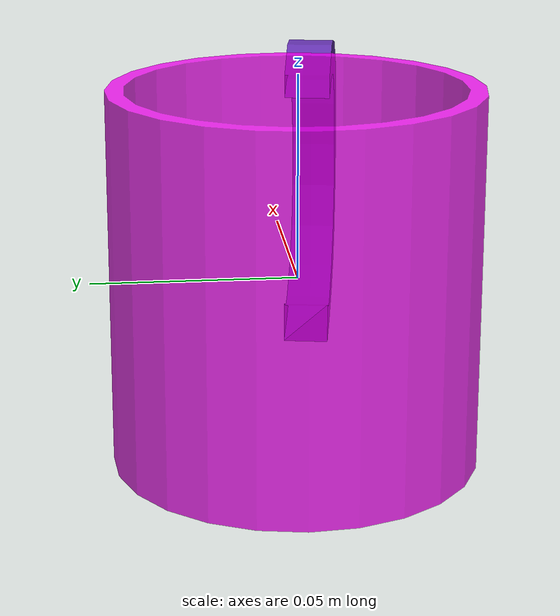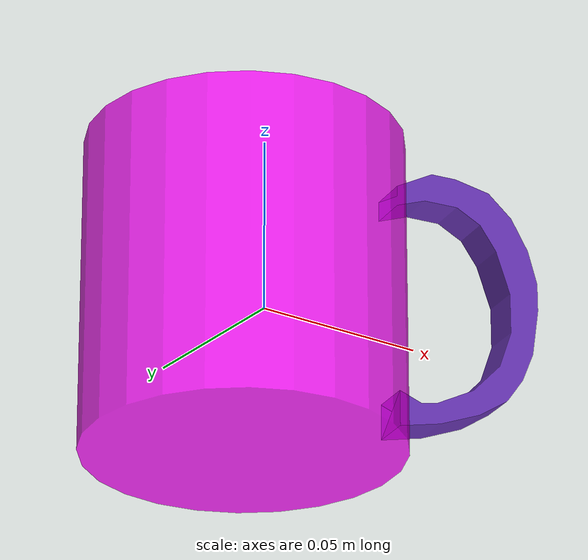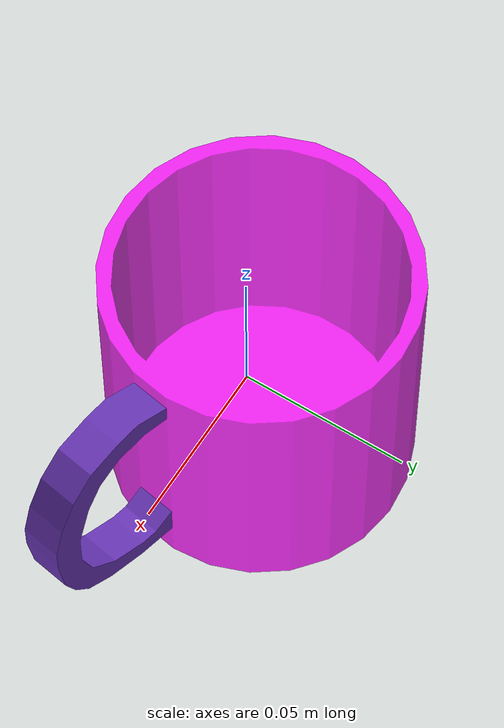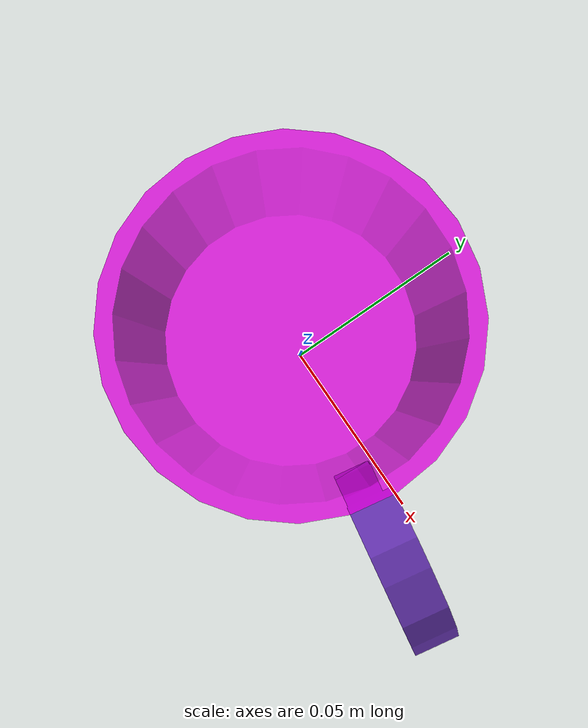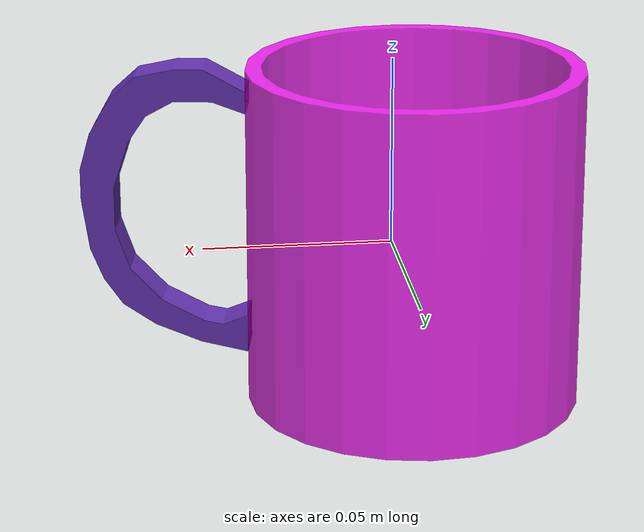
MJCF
<?xml version="1.0" encoding="utf-8"?>
<mujoco model="top_watertight_tiny">

  <asset>

    <mesh file="top_watertight_tiny.obj"/>

    <mesh file="top_watertight_tiny_collision_0.obj"/>

    <mesh file="top_watertight_tiny_collision_1.obj"/>

    <mesh file="top_watertight_tiny_collision_2.obj"/>

    <mesh file="top_watertight_tiny_collision_3.obj"/>

    <mesh file="top_watertight_tiny_collision_4.obj"/>

    <mesh file="top_watertight_tiny_collision_5.obj"/>

    <mesh file="top_watertight_tiny_collision_6.obj"/>

    <mesh file="top_watertight_tiny_collision_7.obj"/>

    <mesh file="top_watertight_tiny_collision_8.obj"/>

    <mesh file="top_watertight_tiny_collision_9.obj"/>

    <mesh file="top_watertight_tiny_collision_10.obj"/>

    <mesh file="top_watertight_tiny_collision_11.obj"/>

    <mesh file="top_watertight_tiny_collision_12.obj"/>

    <mesh file="top_watertight_tiny_collision_13.obj"/>

    <mesh file="top_watertight_tiny_collision_14.obj"/>

    <mesh file="top_watertight_tiny_collision_15.obj"/>

    <mesh file="top_watertight_tiny_collision_16.obj"/>

    <mesh file="top_watertight_tiny_collision_17.obj"/>

    <mesh file="top_watertight_tiny_collision_18.obj"/>

    <mesh file="top_watertight_tiny_collision_19.obj"/>

    <mesh file="top_watertight_tiny_collision_20.obj"/>

    <mesh file="top_watertight_tiny_collision_21.obj"/>

    <mesh file="top_watertight_tiny_collision_22.obj"/>

    <mesh file="top_watertight_tiny_collision_23.obj"/>

    <mesh file="top_watertight_tiny_collision_24.obj"/>

    <mesh file="top_watertight_tiny_collision_25.obj"/>

    <mesh file="top_watertight_tiny_collision_26.obj"/>

    <mesh file="top_watertight_tiny_collision_27.obj"/>

    <mesh file="top_watertight_tiny_collision_28.obj"/>

    <mesh file="top_watertight_tiny_collision_29.obj"/>

    <mesh file="top_watertight_tiny_collision_30.obj"/>

    <mesh file="top_watertight_tiny_collision_31.obj"/>

    <mesh file="top_watertight_tiny_collision_32.obj"/>

    <mesh file="top_watertight_tiny_collision_33.obj"/>

    <mesh file="top_watertight_tiny_collision_34.obj"/>

    <mesh file="top_watertight_tiny_collision_35.obj"/>

    <mesh file="top_watertight_tiny_collision_36.obj"/>

    <mesh file="top_watertight_tiny_collision_37.obj"/>

    <mesh file="top_watertight_tiny_collision_38.obj"/>

    <mesh file="top_watertight_tiny_collision_39.obj"/>

    <mesh file="top_watertight_tiny_collision_40.obj"/>

    <mesh file="top_watertight_tiny_collision_41.obj"/>

    <mesh file="top_watertight_tiny_collision_42.obj"/>

    <mesh file="top_watertight_tiny_collision_43.obj"/>

    <mesh file="top_watertight_tiny_collision_44.obj"/>

    <mesh file="top_watertight_tiny_collision_45.obj"/>

    <mesh file="top_watertight_tiny_collision_46.obj"/>

    <mesh file="top_watertight_tiny_collision_47.obj"/>

    <mesh file="top_watertight_tiny_collision_48.obj"/>

    <mesh file="top_watertight_tiny_collision_49.obj"/>

    <mesh file="top_watertight_tiny_collision_50.obj"/>

    <mesh file="top_watertight_tiny_collision_51.obj"/>

    <mesh file="top_watertight_tiny_collision_52.obj"/>

    <mesh file="top_watertight_tiny_collision_53.obj"/>

    <mesh file="top_watertight_tiny_collision_54.obj"/>

    <mesh file="top_watertight_tiny_collision_55.obj"/>

    <mesh file="top_watertight_tiny_collision_56.obj"/>

    <mesh file="top_watertight_tiny_collision_57.obj"/>

    <mesh file="top_watertight_tiny_collision_58.obj"/>

    <mesh file="top_watertight_tiny_collision_59.obj"/>

    <mesh file="top_watertight_tiny_collision_60.obj"/>

    <mesh file="top_watertight_tiny_collision_61.obj"/>

    <mesh file="top_watertight_tiny_collision_62.obj"/>

    <mesh file="top_watertight_tiny_collision_63.obj"/>

    <mesh file="top_watertight_tiny_collision_64.obj"/>

    <mesh file="top_watertight_tiny_collision_65.obj"/>

    <mesh file="top_watertight_tiny_collision_66.obj"/>

    <mesh file="top_watertight_tiny_collision_67.obj"/>

    <mesh file="top_watertight_tiny_collision_68.obj"/>

    <mesh file="top_watertight_tiny_collision_69.obj"/>

    <mesh file="top_watertight_tiny_collision_70.obj"/>

    <mesh file="top_watertight_tiny_collision_71.obj"/>

    <mesh file="top_watertight_tiny_collision_72.obj"/>

    <mesh file="top_watertight_tiny_collision_73.obj"/>

    <mesh file="top_watertight_tiny_collision_74.obj"/>

    <mesh file="bottom_watertight_tiny.obj"/>

    <mesh file="bottom_watertight_tiny_collision_0.obj"/>

    <mesh file="bottom_watertight_tiny_collision_1.obj"/>

    <mesh file="bottom_watertight_tiny_collision_2.obj"/>

    <mesh file="bottom_watertight_tiny_collision_3.obj"/>

    <mesh file="bottom_watertight_tiny_collision_4.obj"/>

    <mesh file="bottom_watertight_tiny_collision_5.obj"/>

    <mesh file="bottom_watertight_tiny_collision_6.obj"/>

    <mesh file="bottom_watertight_tiny_collision_7.obj"/>

    <mesh file="bottom_watertight_tiny_collision_8.obj"/>

    <mesh file="bottom_watertight_tiny_collision_9.obj"/>

    <mesh file="bottom_watertight_tiny_collision_10.obj"/>

    <mesh file="bottom_watertight_tiny_collision_11.obj"/>

    <mesh file="bottom_watertight_tiny_collision_12.obj"/>

    <mesh file="bottom_watertight_tiny_collision_13.obj"/>

    <mesh file="bottom_watertight_tiny_collision_14.obj"/>

    <mesh file="bottom_watertight_tiny_collision_15.obj"/>

    <mesh file="bottom_watertight_tiny_collision_16.obj"/>

    <mesh file="bottom_watertight_tiny_collision_17.obj"/>

    <mesh file="bottom_watertight_tiny_collision_18.obj"/>

    <mesh file="bottom_watertight_tiny_collision_19.obj"/>

    <mesh file="bottom_watertight_tiny_collision_20.obj"/>

    <mesh file="bottom_watertight_tiny_collision_21.obj"/>

    <mesh file="bottom_watertight_tiny_collision_22.obj"/>

    <mesh file="bottom_watertight_tiny_collision_23.obj"/>

    <mesh file="bottom_watertight_tiny_collision_24.obj"/>

    <mesh file="bottom_watertight_tiny_collision_25.obj"/>

    <mesh file="bottom_watertight_tiny_collision_26.obj"/>

    <mesh file="bottom_watertight_tiny_collision_27.obj"/>

    <mesh file="bottom_watertight_tiny_collision_28.obj"/>

    <mesh file="bottom_watertight_tiny_collision_29.obj"/>

    <mesh file="bottom_watertight_tiny_collision_30.obj"/>

    <mesh file="bottom_watertight_tiny_collision_31.obj"/>

    <mesh file="bottom_watertight_tiny_collision_32.obj"/>

    <mesh file="bottom_watertight_tiny_collision_33.obj"/>

    <mesh file="bottom_watertight_tiny_collision_34.obj"/>

    <mesh file="bottom_watertight_tiny_collision_35.obj"/>

  </asset>

  <worldbody>

    <body name="top_watertight_tiny">

      <freejoint/>

      <geom mesh="top_watertight_tiny" group="2" type="mesh" rgba="0.4 0.2 0.7 1" contype="0" conaffinity="0" solimp="0.90 0.95 0.001" solref="0.02 1.0" density="100" friction="0.95 0.4 0.3"/>

      <geom mesh="top_watertight_tiny_collision_0" rgba="0.3919542809286014 0.33766176132084236 0.6101253547378767 1" group="3" type="mesh" solimp="0.90 0.95 0.001" solref="0.02 1.0" density="100" friction="0.95 0.4 0.3"/>

      <geom mesh="top_watertight_tiny_collision_1" rgba="0.009675265050078319 0.4080541806869692 0.12914366905516783 1" group="3" type="mesh" solimp="0.90 0.95 0.001" solref="0.02 1.0" density="100" friction="0.95 0.4 0.3"/>

      <geom mesh="top_watertight_tiny_collision_2" rgba="0.5695169627863276 0.27286326130004834 0.49575011100315025 1" group="3" type="mesh" solimp="0.90 0.95 0.001" solref="0.02 1.0" density="100" friction="0.95 0.4 0.3"/>

      <geom mesh="top_watertight_tiny_collision_3" rgba="0.3430438197780107 0.22466993840039218 0.1984683940436892 1" group="3" type="mesh" solimp="0.90 0.95 0.001" solref="0.02 1.0" density="100" friction="0.95 0.4 0.3"/>

      <geom mesh="top_watertight_tiny_collision_4" rgba="0.09234592759558913 0.5708819599759194 0.7753755785992633 1" group="3" type="mesh" solimp="0.90 0.95 0.001" solref="0.02 1.0" density="100" friction="0.95 0.4 0.3"/>

      <geom mesh="top_watertight_tiny_collision_5" rgba="0.8805010474172906 0.9488384193659842 0.25009421404208765 1" group="3" type="mesh" solimp="0.90 0.95 0.001" solref="0.02 1.0" density="100" friction="0.95 0.4 0.3"/>

      <geom mesh="top_watertight_tiny_collision_6" rgba="0.29108545283713805 0.06467223712559589 0.7679915165958194 1" group="3" type="mesh" solimp="0.90 0.95 0.001" solref="0.02 1.0" density="100" friction="0.95 0.4 0.3"/>

      <geom mesh="top_watertight_tiny_collision_7" rgba="0.4787859104694496 0.049628436475867566 0.3357750892839746 1" group="3" type="mesh" solimp="0.90 0.95 0.001" solref="0.02 1.0" density="100" friction="0.95 0.4 0.3"/>

      <geom mesh="top_watertight_tiny_collision_8" rgba="0.8267939298536675 0.31840859222576146 0.36066606521623523 1" group="3" type="mesh" solimp="0.90 0.95 0.001" solref="0.02 1.0" density="100" friction="0.95 0.4 0.3"/>

      <geom mesh="top_watertight_tiny_collision_9" rgba="0.894199596777209 0.5504527527574182 0.11710961455976299 1" group="3" type="mesh" solimp="0.90 0.95 0.001" solref="0.02 1.0" density="100" friction="0.95 0.4 0.3"/>

      <geom mesh="top_watertight_tiny_collision_10" rgba="0.5868509386243852 0.20986855372386515 0.7617356169559211 1" group="3" type="mesh" solimp="0.90 0.95 0.001" solref="0.02 1.0" density="100" friction="0.95 0.4 0.3"/>

      <geom mesh="top_watertight_tiny_collision_11" rgba="0.3678905068441838 0.5791459085475805 0.17610640526762045 1" group="3" type="mesh" solimp="0.90 0.95 0.001" solref="0.02 1.0" density="100" friction="0.95 0.4 0.3"/>

      <geom mesh="top_watertight_tiny_collision_12" rgba="0.9301543992117014 0.10909862789668168 0.10670301401158899 1" group="3" type="mesh" solimp="0.90 0.95 0.001" solref="0.02 1.0" density="100" friction="0.95 0.4 0.3"/>

      <geom mesh="top_watertight_tiny_collision_13" rgba="0.8335509473149793 0.17550008753826696 0.025208866225087112 1" group="3" type="mesh" solimp="0.90 0.95 0.001" solref="0.02 1.0" density="100" friction="0.95 0.4 0.3"/>

      <geom mesh="top_watertight_tiny_collision_14" rgba="0.9395385856664701 0.5599445848534931 0.2753973873095057 1" group="3" type="mesh" solimp="0.90 0.95 0.001" solref="0.02 1.0" density="100" friction="0.95 0.4 0.3"/>

      <geom mesh="top_watertight_tiny_collision_15" rgba="0.8530769919882758 0.8451222408741156 0.6304560950700017 1" group="3" type="mesh" solimp="0.90 0.95 0.001" solref="0.02 1.0" density="100" friction="0.95 0.4 0.3"/>

      <geom mesh="top_watertight_tiny_collision_16" rgba="0.5613258910652602 0.45882914999835755 0.2793698957737065 1" group="3" type="mesh" solimp="0.90 0.95 0.001" solref="0.02 1.0" density="100" friction="0.95 0.4 0.3"/>

      <geom mesh="top_watertight_tiny_collision_17" rgba="0.5272662398519375 0.23637045025508596 0.34357780505028357 1" group="3" type="mesh" solimp="0.90 0.95 0.001" solref="0.02 1.0" density="100" friction="0.95 0.4 0.3"/>

      <geom mesh="top_watertight_tiny_collision_18" rgba="0.06219469546392764 0.7062734363168404 0.023954540552283632 1" group="3" type="mesh" solimp="0.90 0.95 0.001" solref="0.02 1.0" density="100" friction="0.95 0.4 0.3"/>

      <geom mesh="top_watertight_tiny_collision_19" rgba="0.35202056849698005 0.08334786376848546 0.14281187165767106 1" group="3" type="mesh" solimp="0.90 0.95 0.001" solref="0.02 1.0" density="100" friction="0.95 0.4 0.3"/>

      <geom mesh="top_watertight_tiny_collision_20" rgba="0.2767286122624687 0.650353425315472 0.6920893640982593 1" group="3" type="mesh" solimp="0.90 0.95 0.001" solref="0.02 1.0" density="100" friction="0.95 0.4 0.3"/>

      <geom mesh="top_watertight_tiny_collision_21" rgba="0.7169140028731372 0.9995759486926231 0.12582050967569913 1" group="3" type="mesh" solimp="0.90 0.95 0.001" solref="0.02 1.0" density="100" friction="0.95 0.4 0.3"/>

      <geom mesh="top_watertight_tiny_collision_22" rgba="0.5960946570913178 0.21760627360956109 0.681012814581335 1" group="3" type="mesh" solimp="0.90 0.95 0.001" solref="0.02 1.0" density="100" friction="0.95 0.4 0.3"/>

      <geom mesh="top_watertight_tiny_collision_23" rgba="0.017080391527134142 0.6083316404524989 0.21850727427276495 1" group="3" type="mesh" solimp="0.90 0.95 0.001" solref="0.02 1.0" density="100" friction="0.95 0.4 0.3"/>

      <geom mesh="top_watertight_tiny_collision_24" rgba="0.6518561191818929 0.028709003810871492 0.30334715037861637 1" group="3" type="mesh" solimp="0.90 0.95 0.001" solref="0.02 1.0" density="100" friction="0.95 0.4 0.3"/>

      <geom mesh="top_watertight_tiny_collision_25" rgba="0.9500840859739423 0.9057155679177131 0.8408542982085778 1" group="3" type="mesh" solimp="0.90 0.95 0.001" solref="0.02 1.0" density="100" friction="0.95 0.4 0.3"/>

      <geom mesh="top_watertight_tiny_collision_26" rgba="0.36454094845854 0.9867163394099921 0.13077678356314448 1" group="3" type="mesh" solimp="0.90 0.95 0.001" solref="0.02 1.0" density="100" friction="0.95 0.4 0.3"/>

      <geom mesh="top_watertight_tiny_collision_27" rgba="0.6924051605855522 0.9301853789858004 0.9422684022916219 1" group="3" type="mesh" solimp="0.90 0.95 0.001" solref="0.02 1.0" density="100" friction="0.95 0.4 0.3"/>

      <geom mesh="top_watertight_tiny_collision_28" rgba="0.3792055845471284 0.8820767780894447 0.3881970996967937 1" group="3" type="mesh" solimp="0.90 0.95 0.001" solref="0.02 1.0" density="100" friction="0.95 0.4 0.3"/>

      <geom mesh="top_watertight_tiny_collision_29" rgba="0.9615612844498247 0.42720029465962595 0.04719996601002174 1" group="3" type="mesh" solimp="0.90 0.95 0.001" solref="0.02 1.0" density="100" friction="0.95 0.4 0.3"/>

      <geom mesh="top_watertight_tiny_collision_30" rgba="0.0832540163994897 0.281664449858253 0.28784817114830374 1" group="3" type="mesh" solimp="0.90 0.95 0.001" solref="0.02 1.0" density="100" friction="0.95 0.4 0.3"/>

      <geom mesh="top_watertight_tiny_collision_31" rgba="0.3087338241858595 0.26361206336712983 0.3722488227752554 1" group="3" type="mesh" solimp="0.90 0.95 0.001" solref="0.02 1.0" density="100" friction="0.95 0.4 0.3"/>

      <geom mesh="top_watertight_tiny_collision_32" rgba="0.14282833378720827 0.8363504880012563 0.8297676228431364 1" group="3" type="mesh" solimp="0.90 0.95 0.001" solref="0.02 1.0" density="100" friction="0.95 0.4 0.3"/>

      <geom mesh="top_watertight_tiny_collision_33" rgba="0.02454431720786676 0.7560658110740959 0.4115498506779903 1" group="3" type="mesh" solimp="0.90 0.95 0.001" solref="0.02 1.0" density="100" friction="0.95 0.4 0.3"/>

      <geom mesh="top_watertight_tiny_collision_34" rgba="0.33198203635880597 0.8160150103898857 0.06803121523948974 1" group="3" type="mesh" solimp="0.90 0.95 0.001" solref="0.02 1.0" density="100" friction="0.95 0.4 0.3"/>

      <geom mesh="top_watertight_tiny_collision_35" rgba="0.16042593995564025 0.05788960513435215 0.41051166494019387 1" group="3" type="mesh" solimp="0.90 0.95 0.001" solref="0.02 1.0" density="100" friction="0.95 0.4 0.3"/>

      <geom mesh="top_watertight_tiny_collision_36" rgba="0.30042718337092555 0.5533294455637431 0.9385795643943569 1" group="3" type="mesh" solimp="0.90 0.95 0.001" solref="0.02 1.0" density="100" friction="0.95 0.4 0.3"/>

      <geom mesh="top_watertight_tiny_collision_37" rgba="0.8428653400254756 0.41146890020940285 0.9946003651498975 1" group="3" type="mesh" solimp="0.90 0.95 0.001" solref="0.02 1.0" density="100" friction="0.95 0.4 0.3"/>

      <geom mesh="top_watertight_tiny_collision_38" rgba="0.4630489409659496 0.5601276315200703 0.5878687356737293 1" group="3" type="mesh" solimp="0.90 0.95 0.001" solref="0.02 1.0" density="100" friction="0.95 0.4 0.3"/>

      <geom mesh="top_watertight_tiny_collision_39" rgba="0.7412250873502351 0.013972965268557735 0.04244781657689167 1" group="3" type="mesh" solimp="0.90 0.95 0.001" solref="0.02 1.0" density="100" friction="0.95 0.4 0.3"/>

      <geom mesh="top_watertight_tiny_collision_40" rgba="0.9106330903748439 0.15851531059834734 0.49717989739105584 1" group="3" type="mesh" solimp="0.90 0.95 0.001" solref="0.02 1.0" density="100" friction="0.95 0.4 0.3"/>

      <geom mesh="top_watertight_tiny_collision_41" rgba="0.09397482306633165 0.7754171130714241 0.399438341253206 1" group="3" type="mesh" solimp="0.90 0.95 0.001" solref="0.02 1.0" density="100" friction="0.95 0.4 0.3"/>

      <geom mesh="top_watertight_tiny_collision_42" rgba="0.8484830137781723 0.22468416181203243 0.4900291884940714 1" group="3" type="mesh" solimp="0.90 0.95 0.001" solref="0.02 1.0" density="100" friction="0.95 0.4 0.3"/>

      <geom mesh="top_watertight_tiny_collision_43" rgba="0.7032641744937037 0.7629147146657931 0.6642370771243394 1" group="3" type="mesh" solimp="0.90 0.95 0.001" solref="0.02 1.0" density="100" friction="0.95 0.4 0.3"/>

      <geom mesh="top_watertight_tiny_collision_44" rgba="0.9745488240529014 0.46985746588928534 0.8824757853968976 1" group="3" type="mesh" solimp="0.90 0.95 0.001" solref="0.02 1.0" density="100" friction="0.95 0.4 0.3"/>

      <geom mesh="top_watertight_tiny_collision_45" rgba="0.18942158843857881 0.8833262024222952 0.765810167434738 1" group="3" type="mesh" solimp="0.90 0.95 0.001" solref="0.02 1.0" density="100" friction="0.95 0.4 0.3"/>

      <geom mesh="top_watertight_tiny_collision_46" rgba="0.029714259703401025 0.8152959847213447 0.4420610979169258 1" group="3" type="mesh" solimp="0.90 0.95 0.001" solref="0.02 1.0" density="100" friction="0.95 0.4 0.3"/>

      <geom mesh="top_watertight_tiny_collision_47" rgba="0.6635034865001267 0.2736853835481978 0.6243715773480459 1" group="3" type="mesh" solimp="0.90 0.95 0.001" solref="0.02 1.0" density="100" friction="0.95 0.4 0.3"/>

      <geom mesh="top_watertight_tiny_collision_48" rgba="0.8111907892325716 0.3859457842516616 0.8166511547434933 1" group="3" type="mesh" solimp="0.90 0.95 0.001" solref="0.02 1.0" density="100" friction="0.95 0.4 0.3"/>

      <geom mesh="top_watertight_tiny_collision_49" rgba="0.5430999693801868 0.9937634351072571 0.4262671151446582 1" group="3" type="mesh" solimp="0.90 0.95 0.001" solref="0.02 1.0" density="100" friction="0.95 0.4 0.3"/>

      <geom mesh="top_watertight_tiny_collision_50" rgba="0.6486770702147696 0.8918415454302568 0.4385697014738107 1" group="3" type="mesh" solimp="0.90 0.95 0.001" solref="0.02 1.0" density="100" friction="0.95 0.4 0.3"/>

      <geom mesh="top_watertight_tiny_collision_51" rgba="0.45922543068067256 0.029377369617975324 0.5292069199703783 1" group="3" type="mesh" solimp="0.90 0.95 0.001" solref="0.02 1.0" density="100" friction="0.95 0.4 0.3"/>

      <geom mesh="top_watertight_tiny_collision_52" rgba="0.47652113055283063 0.5696959070296884 0.131763471234975 1" group="3" type="mesh" solimp="0.90 0.95 0.001" solref="0.02 1.0" density="100" friction="0.95 0.4 0.3"/>

      <geom mesh="top_watertight_tiny_collision_53" rgba="0.9247030759261631 0.34426536791733353 0.3838799295313029 1" group="3" type="mesh" solimp="0.90 0.95 0.001" solref="0.02 1.0" density="100" friction="0.95 0.4 0.3"/>

      <geom mesh="top_watertight_tiny_collision_54" rgba="0.588029360516782 0.24130007800036168 0.8847538377028364 1" group="3" type="mesh" solimp="0.90 0.95 0.001" solref="0.02 1.0" density="100" friction="0.95 0.4 0.3"/>

      <geom mesh="top_watertight_tiny_collision_55" rgba="0.6140439077335907 0.3736586343410965 0.23369980336227603 1" group="3" type="mesh" solimp="0.90 0.95 0.001" solref="0.02 1.0" density="100" friction="0.95 0.4 0.3"/>

      <geom mesh="top_watertight_tiny_collision_56" rgba="0.375579542187528 0.8344407522341951 0.999977326433484 1" group="3" type="mesh" solimp="0.90 0.95 0.001" solref="0.02 1.0" density="100" friction="0.95 0.4 0.3"/>

      <geom mesh="top_watertight_tiny_collision_57" rgba="0.6841770480482772 0.8425171748462127 0.05231073408496967 1" group="3" type="mesh" solimp="0.90 0.95 0.001" solref="0.02 1.0" density="100" friction="0.95 0.4 0.3"/>

      <geom mesh="top_watertight_tiny_collision_58" rgba="0.07010075766501411 0.975878050484173 0.819399674498412 1" group="3" type="mesh" solimp="0.90 0.95 0.001" solref="0.02 1.0" density="100" friction="0.95 0.4 0.3"/>

      <geom mesh="top_watertight_tiny_collision_59" rgba="0.8266140550343901 0.40514944749153425 0.8016716677286333 1" group="3" type="mesh" solimp="0.90 0.95 0.001" solref="0.02 1.0" density="100" friction="0.95 0.4 0.3"/>

      <geom mesh="top_watertight_tiny_collision_60" rgba="0.6014726649231217 0.19266667159356188 0.9275051883890439 1" group="3" type="mesh" solimp="0.90 0.95 0.001" solref="0.02 1.0" density="100" friction="0.95 0.4 0.3"/>

      <geom mesh="top_watertight_tiny_collision_61" rgba="0.9955748189444327 0.5194530350676244 0.2192086336540865 1" group="3" type="mesh" solimp="0.90 0.95 0.001" solref="0.02 1.0" density="100" friction="0.95 0.4 0.3"/>

      <geom mesh="top_watertight_tiny_collision_62" rgba="0.08598419260770385 0.9321971490226447 0.43606585628772 1" group="3" type="mesh" solimp="0.90 0.95 0.001" solref="0.02 1.0" density="100" friction="0.95 0.4 0.3"/>

      <geom mesh="top_watertight_tiny_collision_63" rgba="0.6650190168571781 0.5692840694413954 0.2200528729616339 1" group="3" type="mesh" solimp="0.90 0.95 0.001" solref="0.02 1.0" density="100" friction="0.95 0.4 0.3"/>

      <geom mesh="top_watertight_tiny_collision_64" rgba="0.22501875761796064 0.6934524475241554 0.014665925466734953 1" group="3" type="mesh" solimp="0.90 0.95 0.001" solref="0.02 1.0" density="100" friction="0.95 0.4 0.3"/>

      <geom mesh="top_watertight_tiny_collision_65" rgba="0.2560418778895871 0.5846562019020468 0.9267552190738796 1" group="3" type="mesh" solimp="0.90 0.95 0.001" solref="0.02 1.0" density="100" friction="0.95 0.4 0.3"/>

      <geom mesh="top_watertight_tiny_collision_66" rgba="0.5789086539864581 0.34724123589451916 0.723954409886515 1" group="3" type="mesh" solimp="0.90 0.95 0.001" solref="0.02 1.0" density="100" friction="0.95 0.4 0.3"/>

      <geom mesh="top_watertight_tiny_collision_67" rgba="0.7383399725868115 0.546677838072281 0.5681371167562868 1" group="3" type="mesh" solimp="0.90 0.95 0.001" solref="0.02 1.0" density="100" friction="0.95 0.4 0.3"/>

      <geom mesh="top_watertight_tiny_collision_68" rgba="0.4192506159124909 0.8934610715413878 0.6026415825708917 1" group="3" type="mesh" solimp="0.90 0.95 0.001" solref="0.02 1.0" density="100" friction="0.95 0.4 0.3"/>

      <geom mesh="top_watertight_tiny_collision_69" rgba="0.25872196737241804 0.13073161246321896 0.6961876790683182 1" group="3" type="mesh" solimp="0.90 0.95 0.001" solref="0.02 1.0" density="100" friction="0.95 0.4 0.3"/>

      <geom mesh="top_watertight_tiny_collision_70" rgba="0.16222485253473118 0.9482598265947471 0.13518506511483075 1" group="3" type="mesh" solimp="0.90 0.95 0.001" solref="0.02 1.0" density="100" friction="0.95 0.4 0.3"/>

      <geom mesh="top_watertight_tiny_collision_71" rgba="0.5616976651228155 0.4388902025160375 0.14493992069136086 1" group="3" type="mesh" solimp="0.90 0.95 0.001" solref="0.02 1.0" density="100" friction="0.95 0.4 0.3"/>

      <geom mesh="top_watertight_tiny_collision_72" rgba="0.09768603209230842 0.21257050683426426 0.42677823506001755 1" group="3" type="mesh" solimp="0.90 0.95 0.001" solref="0.02 1.0" density="100" friction="0.95 0.4 0.3"/>

      <geom mesh="top_watertight_tiny_collision_73" rgba="0.3635368625579324 0.10712872532142037 0.9090652282994426 1" group="3" type="mesh" solimp="0.90 0.95 0.001" solref="0.02 1.0" density="100" friction="0.95 0.4 0.3"/>

      <geom mesh="top_watertight_tiny_collision_74" rgba="0.1912435579243491 0.8739542148418369 0.15353377104725874 1" group="3" type="mesh" solimp="0.90 0.95 0.001" solref="0.02 1.0" density="100" friction="0.95 0.4 0.3"/>

      <body name="bottom_watertight_tiny">

        <geom mesh="bottom_watertight_tiny" group="2" type="mesh" rgba="1 0 1 0.8" contype="0" conaffinity="0" solimp="0.90 0.95 0.001" solref="0.02 1.0" density="100" friction="0.95 0.4 0.3"/>

        <geom mesh="bottom_watertight_tiny_collision_0" rgba="0.66080150862864 0.5380058882054022 0.9854906493453122 1" group="3" type="mesh" solimp="0.90 0.95 0.001" solref="0.02 1.0" density="100" friction="0.95 0.4 0.3"/>

        <geom mesh="bottom_watertight_tiny_collision_1" rgba="0.8649680687118713 0.025684688969506264 0.5476656230753271 1" group="3" type="mesh" solimp="0.90 0.95 0.001" solref="0.02 1.0" density="100" friction="0.95 0.4 0.3"/>

        <geom mesh="bottom_watertight_tiny_collision_2" rgba="0.7190721837692917 0.32312527609018815 0.46700004640861026 1" group="3" type="mesh" solimp="0.90 0.95 0.001" solref="0.02 1.0" density="100" friction="0.95 0.4 0.3"/>

        <geom mesh="bottom_watertight_tiny_collision_3" rgba="0.8174538532231137 0.6223369316866464 0.7769377814124889 1" group="3" type="mesh" solimp="0.90 0.95 0.001" solref="0.02 1.0" density="100" friction="0.95 0.4 0.3"/>

        <geom mesh="bottom_watertight_tiny_collision_4" rgba="0.9188647188278755 0.6898727974327402 0.5772653742809447 1" group="3" type="mesh" solimp="0.90 0.95 0.001" solref="0.02 1.0" density="100" friction="0.95 0.4 0.3"/>

        <geom mesh="bottom_watertight_tiny_collision_5" rgba="0.7871124796325047 0.8751465368533379 0.4808815155805871 1" group="3" type="mesh" solimp="0.90 0.95 0.001" solref="0.02 1.0" density="100" friction="0.95 0.4 0.3"/>

        <geom mesh="bottom_watertight_tiny_collision_6" rgba="0.29520945920093844 0.2335041118286144 0.15505170144559077 1" group="3" type="mesh" solimp="0.90 0.95 0.001" solref="0.02 1.0" density="100" friction="0.95 0.4 0.3"/>

        <geom mesh="bottom_watertight_tiny_collision_7" rgba="0.7725176207239992 0.025548576150831392 0.040658963223252687 1" group="3" type="mesh" solimp="0.90 0.95 0.001" solref="0.02 1.0" density="100" friction="0.95 0.4 0.3"/>

        <geom mesh="bottom_watertight_tiny_collision_8" rgba="0.6622442059564169 0.45142412913539287 0.3436647001896823 1" group="3" type="mesh" solimp="0.90 0.95 0.001" solref="0.02 1.0" density="100" friction="0.95 0.4 0.3"/>

        <geom mesh="bottom_watertight_tiny_collision_9" rgba="0.39908856549979177 0.30661900005466314 0.5661970269167976 1" group="3" type="mesh" solimp="0.90 0.95 0.001" solref="0.02 1.0" density="100" friction="0.95 0.4 0.3"/>

        <geom mesh="bottom_watertight_tiny_collision_10" rgba="0.021087211552862972 0.3944265227092989 0.33080358485430217 1" group="3" type="mesh" solimp="0.90 0.95 0.001" solref="0.02 1.0" density="100" friction="0.95 0.4 0.3"/>

        <geom mesh="bottom_watertight_tiny_collision_11" rgba="0.935881609642433 0.09289435291431514 0.35753817232795104 1" group="3" type="mesh" solimp="0.90 0.95 0.001" solref="0.02 1.0" density="100" friction="0.95 0.4 0.3"/>

        <geom mesh="bottom_watertight_tiny_collision_12" rgba="0.30622835095484513 0.2160495255090752 0.13852656190172574 1" group="3" type="mesh" solimp="0.90 0.95 0.001" solref="0.02 1.0" density="100" friction="0.95 0.4 0.3"/>

        <geom mesh="bottom_watertight_tiny_collision_13" rgba="0.04934990661393368 0.3920735361064366 0.709738952982324 1" group="3" type="mesh" solimp="0.90 0.95 0.001" solref="0.02 1.0" density="100" friction="0.95 0.4 0.3"/>

        <geom mesh="bottom_watertight_tiny_collision_14" rgba="0.06067465002887629 0.5587213332842239 0.27173847698878195 1" group="3" type="mesh" solimp="0.90 0.95 0.001" solref="0.02 1.0" density="100" friction="0.95 0.4 0.3"/>

        <geom mesh="bottom_watertight_tiny_collision_15" rgba="0.4991898335563617 0.4533180623291694 0.23684187156783953 1" group="3" type="mesh" solimp="0.90 0.95 0.001" solref="0.02 1.0" density="100" friction="0.95 0.4 0.3"/>

        <geom mesh="bottom_watertight_tiny_collision_16" rgba="0.9605135273251614 0.8066761268614557 0.5523606416400294 1" group="3" type="mesh" solimp="0.90 0.95 0.001" solref="0.02 1.0" density="100" friction="0.95 0.4 0.3"/>

        <geom mesh="bottom_watertight_tiny_collision_17" rgba="0.47206955028908204 0.9868504021448171 0.17027488436945726 1" group="3" type="mesh" solimp="0.90 0.95 0.001" solref="0.02 1.0" density="100" friction="0.95 0.4 0.3"/>

        <geom mesh="bottom_watertight_tiny_collision_18" rgba="0.06592308806887626 0.9146155892597078 0.5018748995981298 1" group="3" type="mesh" solimp="0.90 0.95 0.001" solref="0.02 1.0" density="100" friction="0.95 0.4 0.3"/>

        <geom mesh="bottom_watertight_tiny_collision_19" rgba="0.009426326521721151 0.7528586866932523 0.6044291662573583 1" group="3" type="mesh" solimp="0.90 0.95 0.001" solref="0.02 1.0" density="100" friction="0.95 0.4 0.3"/>

        <geom mesh="bottom_watertight_tiny_collision_20" rgba="0.016806984184785434 0.5035154941881558 0.5959573673118701 1" group="3" type="mesh" solimp="0.90 0.95 0.001" solref="0.02 1.0" density="100" friction="0.95 0.4 0.3"/>

        <geom mesh="bottom_watertight_tiny_collision_21" rgba="0.7353986665774392 0.8767327162596925 0.5214748263434036 1" group="3" type="mesh" solimp="0.90 0.95 0.001" solref="0.02 1.0" density="100" friction="0.95 0.4 0.3"/>

        <geom mesh="bottom_watertight_tiny_collision_22" rgba="0.5602148324206766 0.2387717595431934 0.001819294332831789 1" group="3" type="mesh" solimp="0.90 0.95 0.001" solref="0.02 1.0" density="100" friction="0.95 0.4 0.3"/>

        <geom mesh="bottom_watertight_tiny_collision_23" rgba="0.6208296880220707 0.896640417259734 0.519115348173543 1" group="3" type="mesh" solimp="0.90 0.95 0.001" solref="0.02 1.0" density="100" friction="0.95 0.4 0.3"/>

        <geom mesh="bottom_watertight_tiny_collision_24" rgba="0.8039600097709819 0.115333407123974 0.28596260183015654 1" group="3" type="mesh" solimp="0.90 0.95 0.001" solref="0.02 1.0" density="100" friction="0.95 0.4 0.3"/>

        <geom mesh="bottom_watertight_tiny_collision_25" rgba="0.4526812242121919 0.2492946263292195 0.7155606681686345 1" group="3" type="mesh" solimp="0.90 0.95 0.001" solref="0.02 1.0" density="100" friction="0.95 0.4 0.3"/>

        <geom mesh="bottom_watertight_tiny_collision_26" rgba="0.3863429359029915 0.1442949494930279 0.9830823693542962 1" group="3" type="mesh" solimp="0.90 0.95 0.001" solref="0.02 1.0" density="100" friction="0.95 0.4 0.3"/>

        <geom mesh="bottom_watertight_tiny_collision_27" rgba="0.6452511735029485 0.1313918382837599 0.7687265166699264 1" group="3" type="mesh" solimp="0.90 0.95 0.001" solref="0.02 1.0" density="100" friction="0.95 0.4 0.3"/>

        <geom mesh="bottom_watertight_tiny_collision_28" rgba="0.46099155087111987 0.40242360836130775 0.23511295977268842 1" group="3" type="mesh" solimp="0.90 0.95 0.001" solref="0.02 1.0" density="100" friction="0.95 0.4 0.3"/>

        <geom mesh="bottom_watertight_tiny_collision_29" rgba="0.49455472236487485 0.40747496676516504 0.30927563459365937 1" group="3" type="mesh" solimp="0.90 0.95 0.001" solref="0.02 1.0" density="100" friction="0.95 0.4 0.3"/>

        <geom mesh="bottom_watertight_tiny_collision_30" rgba="0.413813224159961 0.7566762577621784 0.40750066337400725 1" group="3" type="mesh" solimp="0.90 0.95 0.001" solref="0.02 1.0" density="100" friction="0.95 0.4 0.3"/>

        <geom mesh="bottom_watertight_tiny_collision_31" rgba="0.2738279143976198 0.45576113009302655 0.8145147052523032 1" group="3" type="mesh" solimp="0.90 0.95 0.001" solref="0.02 1.0" density="100" friction="0.95 0.4 0.3"/>

        <geom mesh="bottom_watertight_tiny_collision_32" rgba="0.43305578885202356 0.1698517166744351 0.5675566060264888 1" group="3" type="mesh" solimp="0.90 0.95 0.001" solref="0.02 1.0" density="100" friction="0.95 0.4 0.3"/>

        <geom mesh="bottom_watertight_tiny_collision_33" rgba="0.8831367917108067 0.18801682252636265 0.24241187530728192 1" group="3" type="mesh" solimp="0.90 0.95 0.001" solref="0.02 1.0" density="100" friction="0.95 0.4 0.3"/>

        <geom mesh="bottom_watertight_tiny_collision_34" rgba="0.3435362485754758 0.9700541292511567 0.4830027376160766 1" group="3" type="mesh" solimp="0.90 0.95 0.001" solref="0.02 1.0" density="100" friction="0.95 0.4 0.3"/>

        <geom mesh="bottom_watertight_tiny_collision_35" rgba="0.6129648751210887 0.04481082269593284 0.7479011668473566 1" group="3" type="mesh" solimp="0.90 0.95 0.001" solref="0.02 1.0" density="100" friction="0.95 0.4 0.3"/>

        <site name="bottom_watertight_tiny_touch_site" pos="0 0 0" size="0.2" rgba="1 0 0 0." type="sphere"/>
      </body>

      <site name="top_watertight_tiny_touch_site" pos="0 0 0" size="0.2" rgba="1 0 0 0." type="sphere"/>
    </body>

  </worldbody>

  <sensor>
    <touch name="top_watertight_tiny_touch" site="top_watertight_tiny_touch_site"/>
    <touch name="bottom_watertight_tiny_touch" site="bottom_watertight_tiny_touch_site"/>
  </sensor>
</mujoco>
